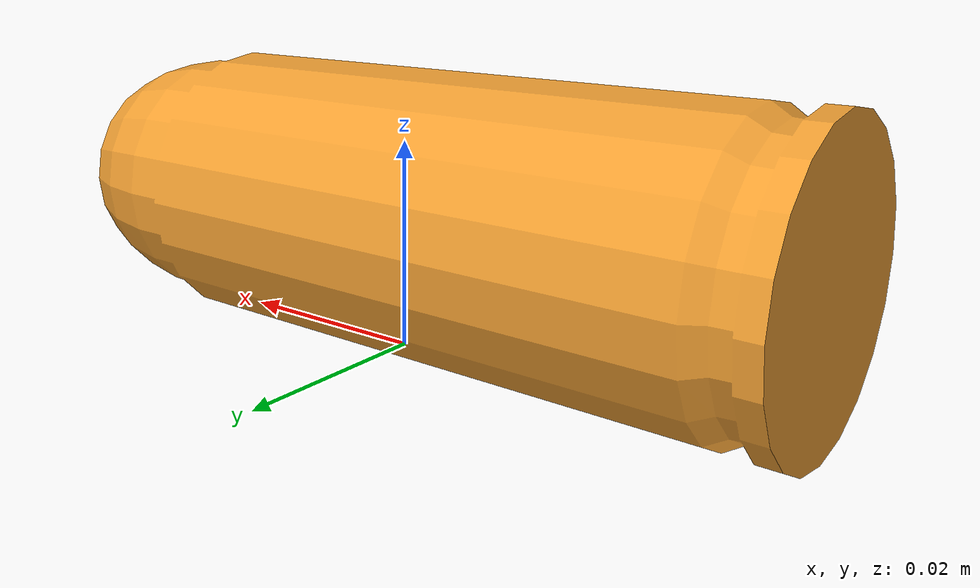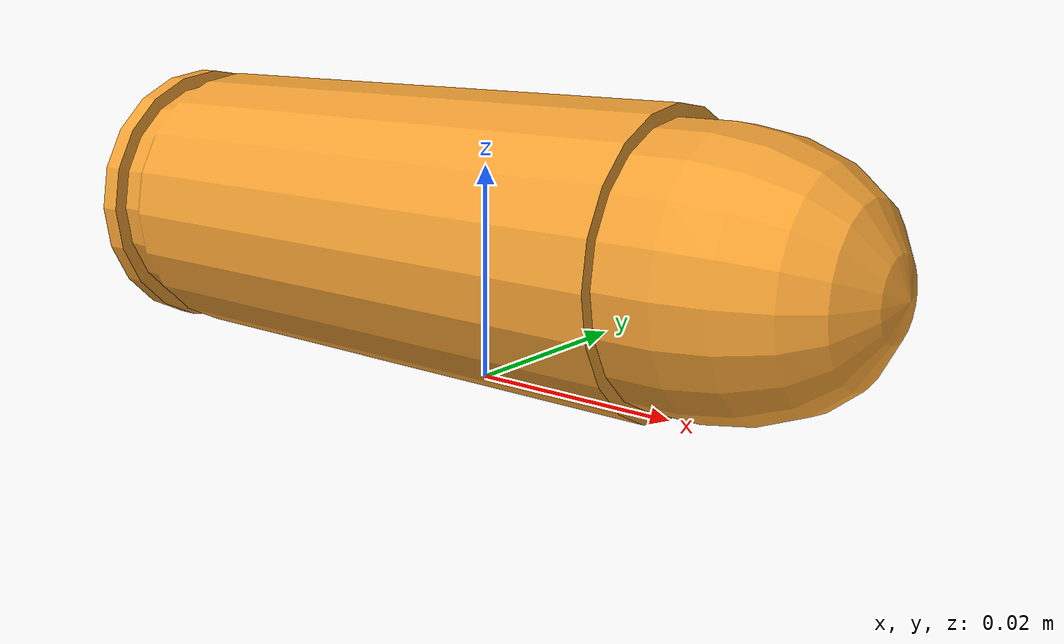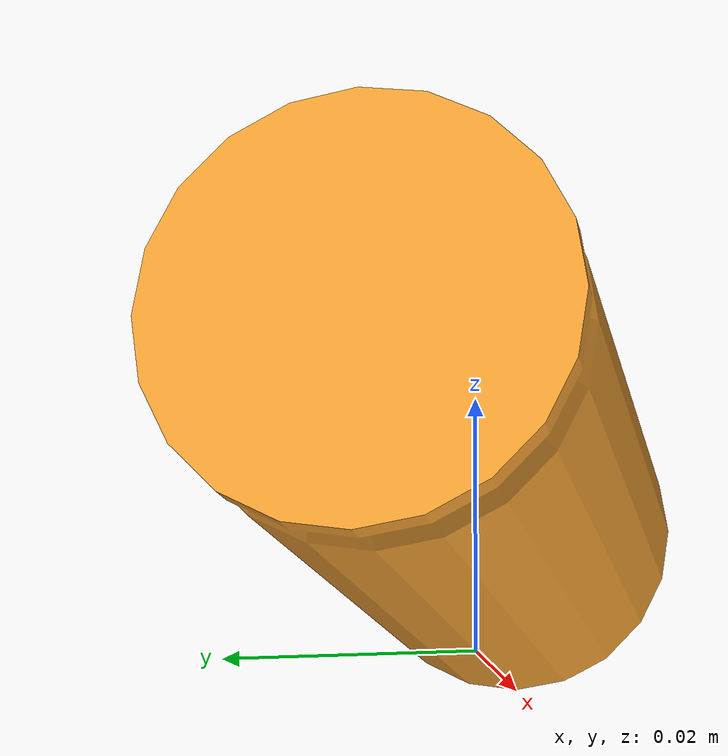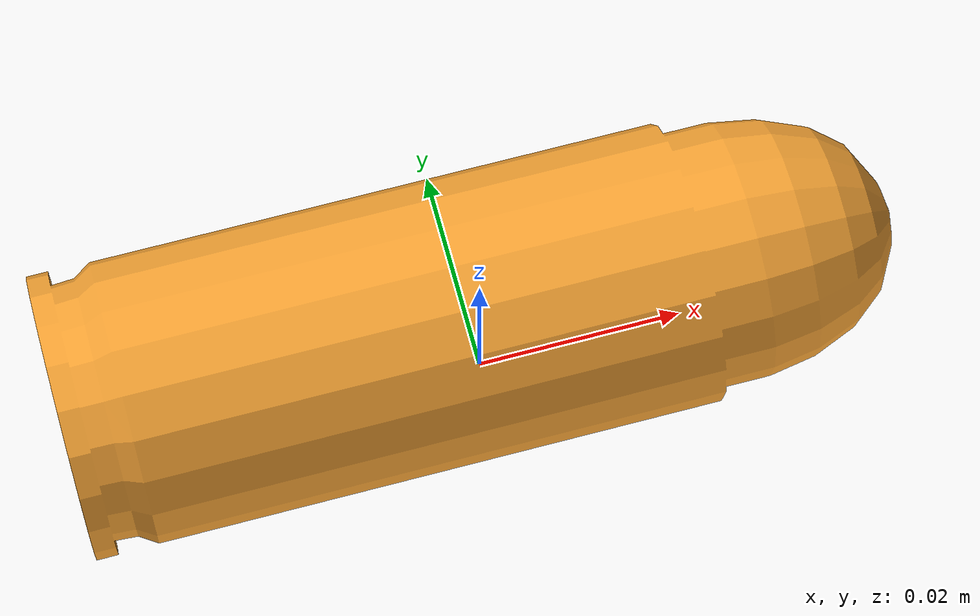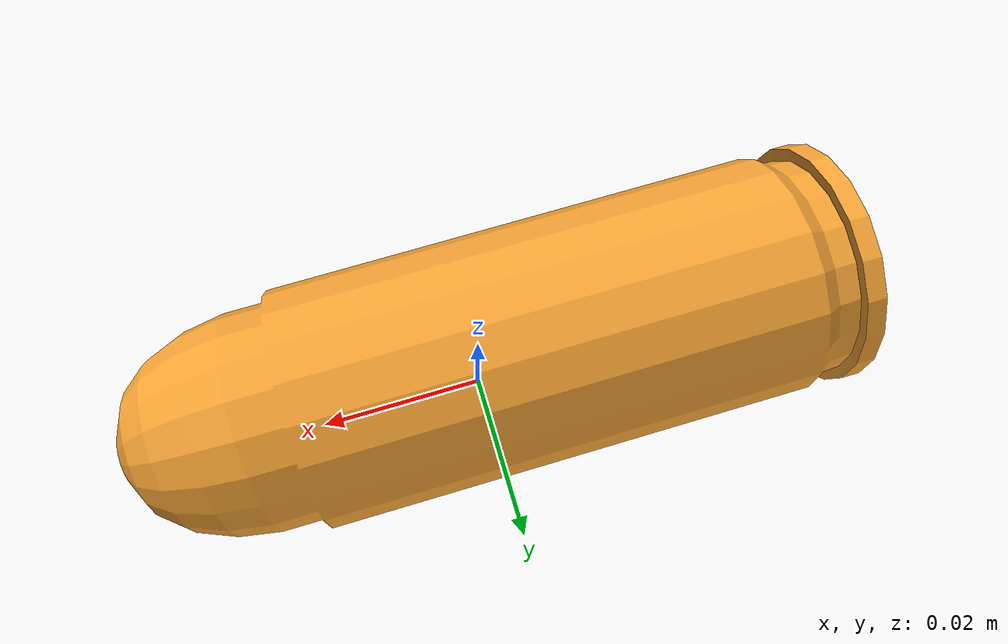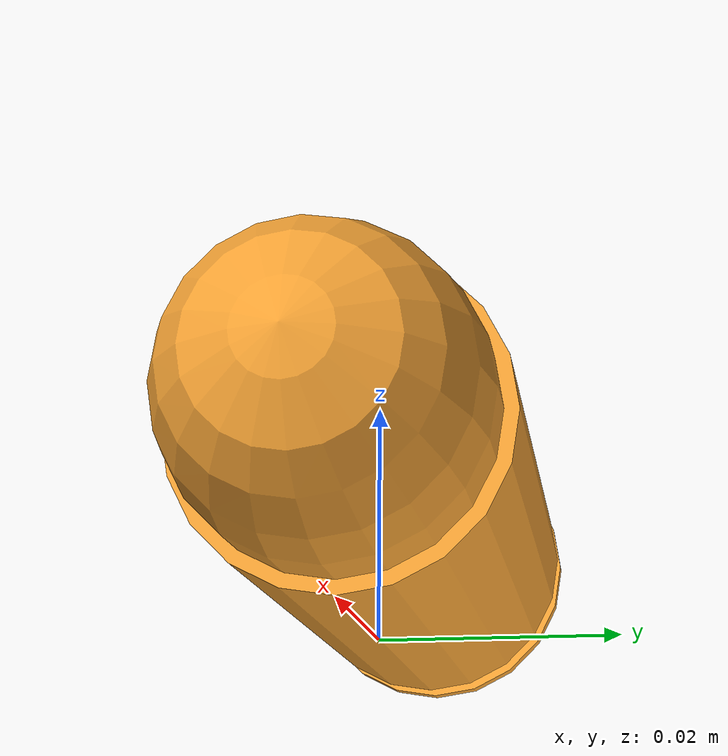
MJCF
<mujoco model="custom_obvious_mesh_turbosquid_bullet">
  <asset>
    <mesh name="visual_mesh" file="turbosquid_bullet.obj" />
  </asset>
  <worldbody>
    <body>
      <body name="object">
        <geom conaffinity="0" contype="0" group="1" mesh="visual_mesh" rgba="0.95 0.63 0.20 1" type="mesh" />

        <geom
          density="100"
          friction="0.95 0.3 0.1"
          group="0"
          pos="0.0000 0.0000 0.0180"
          rgba="0.8 0.8 0.8 0.0"
          size="0.0450 0.0180 0.0180"
          type="box"
        />
        <geom
          name="reg_bbox"
          conaffinity="0"
          contype="0"
          group="3"
          pos="0.0000 0.0000 0.0180"
          rgba="0 0 0 0"
          size="0.0450 0.0180 0.0180"
          type="box"
        />
      </body>
      <site rgba="0 0 0 0" size="0.005" pos="0 0 0" name="bottom_site" />
      <site rgba="0 0 0 0" size="0.005" pos="0 0 0.0360" name="top_site" />
      <site rgba="0 0 0 0" size="0.005" pos="0.0450 0.0450 0" name="horizontal_radius_site" />
    </body>
  </worldbody>
</mujoco>
